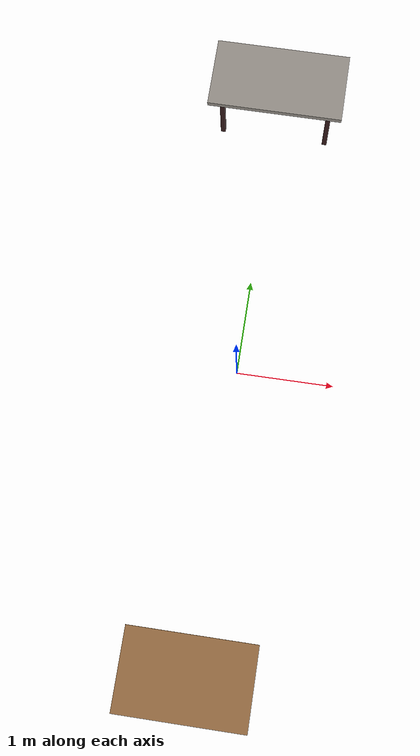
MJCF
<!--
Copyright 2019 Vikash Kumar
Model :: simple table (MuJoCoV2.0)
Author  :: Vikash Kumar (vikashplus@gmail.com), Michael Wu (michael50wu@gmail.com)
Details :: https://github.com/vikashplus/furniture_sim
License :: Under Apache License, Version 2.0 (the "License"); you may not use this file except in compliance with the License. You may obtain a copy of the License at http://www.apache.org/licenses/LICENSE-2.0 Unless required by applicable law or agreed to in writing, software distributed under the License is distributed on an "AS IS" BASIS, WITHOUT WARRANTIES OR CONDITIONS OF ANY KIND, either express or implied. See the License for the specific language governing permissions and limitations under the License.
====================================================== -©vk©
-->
<mujoco model="simpleTable">

    <compiler angle="radian" meshdir="" texturedir=""/>
    <include file="../furniture_sim/simpleTable/simpleTable_asset.xml"/>
    <visual>
        <headlight diffuse=".9 .9 .9"/>
    </visual>

    <worldbody>

        <body pos="0 -3 0">
            <include file="../furniture_sim/simpleTable/simpleWoodTable_body.xml" />
        </body>
        <body pos="0 3 0">
            <include file="../furniture_sim/simpleTable/simpleMarbleTable_body.xml" />
        </body>
    </worldbody>

</mujoco>

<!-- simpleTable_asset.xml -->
<mujocoinclude>

    <asset>
        <texture name="T_simpleWoodTable" type="cube" height="1" width="1" file="../../furniture_sim/common/textures/wood1.png" />
        <material name="M_simpleWoodTable" texture="T_simpleWoodTable" rgba="0.8 0.8 0.8 1" shininess="0.2" reflectance="0.3" texuniform="false" />
        <texture name="T_simpleMarbleTable" type="cube" height="1" width="1" file="../../furniture_sim/common/textures/stone0.png" />
        <material name="M_simpleMarbleTable" texture="T_simpleMarbleTable" rgba="0.75 0.75 0.75 1" shininess="1" reflectance="1" texuniform="false" />
        <texture name="T_simpleGraniteTable" type="cube" height="1" width="1" file="../../furniture_sim/common/textures/stone1.png" />
        <material name="M_simpleGraniteTable" texture="T_simpleGraniteTable" rgba="0.75 0.75 0.75 1" shininess="1" reflectance="1" texuniform="false" />
    </asset>

    <default>

        <default class="viz_simpleWoodTable" >
            <geom group="1" contype="0" conaffinity="0" type="mesh" material="M_simpleWoodTable"/>
        </default>

        <default class="viz_simpleMarbleTable" >
            <geom group="1" contype="0" conaffinity="0" type="mesh" material="M_simpleMarbleTable"/>
        </default>

        <default class="viz_simpleGraniteTable" >
            <geom group="1" contype="0" conaffinity="0" type="mesh" material="M_simpleGraniteTable"/>
        </default>

        <default class="body_simpleTable" >
            <geom contype="1" conaffinity="1" group="4" rgba=".4 .5 .6 1" />
            <joint limited="true" damping="1" frictionloss="0.5" armature=".01" />
        </default>

   </default>

</mujocoinclude>

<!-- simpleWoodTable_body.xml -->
<mujocoinclude>

    <!-- simpleWoodTable -©vk©-->
    <body name="simpleWoodTable" pos="0 0 0"  childclass="body_simpleTable" >
        <geom class="viz_simpleWoodTable" type="box" size=".6 .375 .025" pos="0 0 0.735"/>
        <geom class="viz_simpleWoodTable" type="box" size="0.59 0.26 .05" pos="0 0 0.66"/>
        <geom class="viz_simpleWoodTable" type="box" size="0.025 0.025 0.305" pos="-0.565 0.235 0.305"/>
        <geom class="viz_simpleWoodTable" type="box" size="0.025 0.025 0.305" pos="-0.565 -0.235 0.305"/>
        <geom class="viz_simpleWoodTable" type="box" size="0.025 0.025 0.305" pos="0.565 0.235 0.305"/>
        <geom class="viz_simpleWoodTable" type="box" size="0.025 0.025 0.305" pos="0.565 -0.235 0.305"/>

        <geom type="box" size=".6 .375 .025" pos="0 0 0.735" mass="40" />
        <geom type="box" size="0.59 0.26 .05" pos="0 0 0.66"/>
        <geom type="box" size="0.025 0.025 0.305" pos="-0.565 0.235 0.305"/>
        <geom type="box" size="0.025 0.025 0.305" pos="-0.565 -0.235 0.305"/>
        <geom type="box" size="0.025 0.025 0.305" pos="0.565 0.235 0.305"/>
        <geom type="box" size="0.025 0.025 0.305" pos="0.565 -0.235 0.305"/>
    </body>
</mujocoinclude>

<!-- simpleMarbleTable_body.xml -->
<mujocoinclude>

    <!-- simpleMarbleTable -©vk©-->
    <body name="simpleMarbleTable" pos="0 0 0" childclass="body_simpleTable" >
        <geom class="viz_simpleMarbleTable" type="box" size=".7 .375 .025" pos="0 0 0.735"/>
        <geom class="viz_simpleMarbleTable" rgba=".2 .1 .1 1" type="box" size="0.59 0.26 .05" pos="0 0 0.66"/>
        <geom class="viz_simpleMarbleTable" rgba=".2 .1 .1 1" type="box" size="0.025 0.025 0.305" pos="-0.565 0.235 0.305"/>
        <geom class="viz_simpleMarbleTable" rgba=".2 .1 .1 1" type="box" size="0.025 0.025 0.305" pos="-0.565 -0.235 0.305"/>
        <geom class="viz_simpleMarbleTable" rgba=".2 .1 .1 1" type="box" size="0.025 0.025 0.305" pos="0.565 0.235 0.305"/>
        <geom class="viz_simpleMarbleTable" rgba=".2 .1 .1 1" type="box" size="0.025 0.025 0.305" pos="0.565 -0.235 0.305"/>

        <geom type="box" size=".6 .375 .025" pos="0 0 0.735" mass="40" />
        <geom type="box" size="0.59 0.26 .05" pos="0 0 0.66"/>
        <geom type="box" size="0.025 0.025 0.305" pos="-0.565 0.235 0.305"/>
        <geom type="box" size="0.025 0.025 0.305" pos="-0.565 -0.235 0.305"/>
        <geom type="box" size="0.025 0.025 0.305" pos="0.565 0.235 0.305"/>
        <geom type="box" size="0.025 0.025 0.305" pos="0.565 -0.235 0.305"/>
    </body>
</mujocoinclude>
